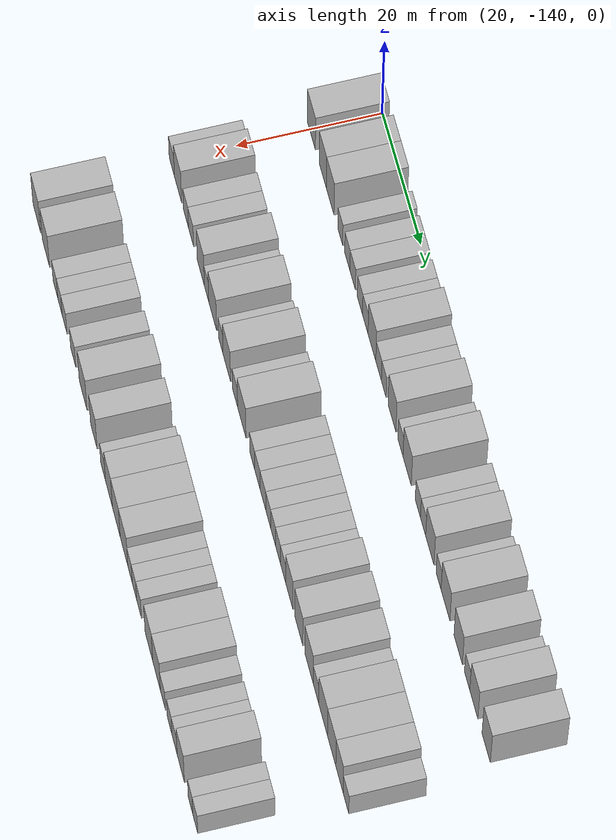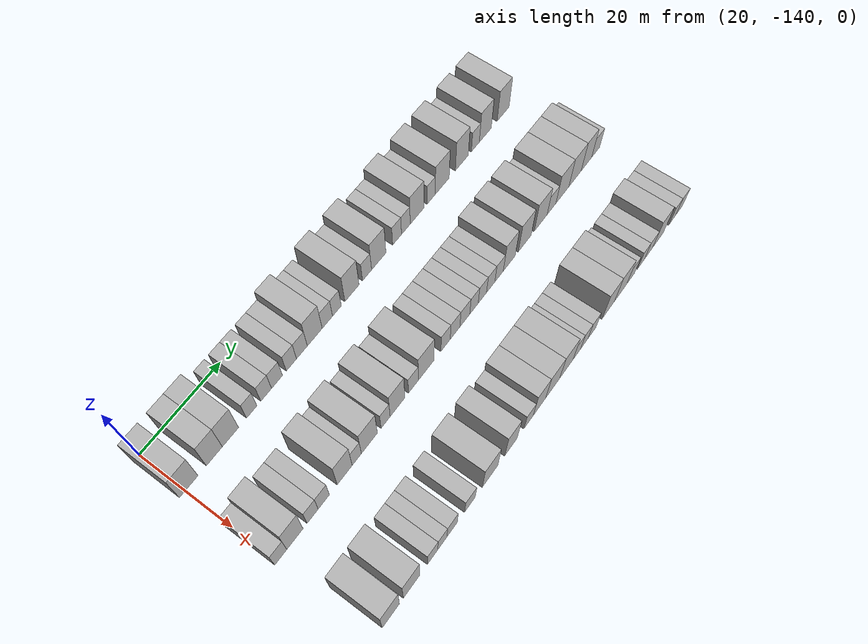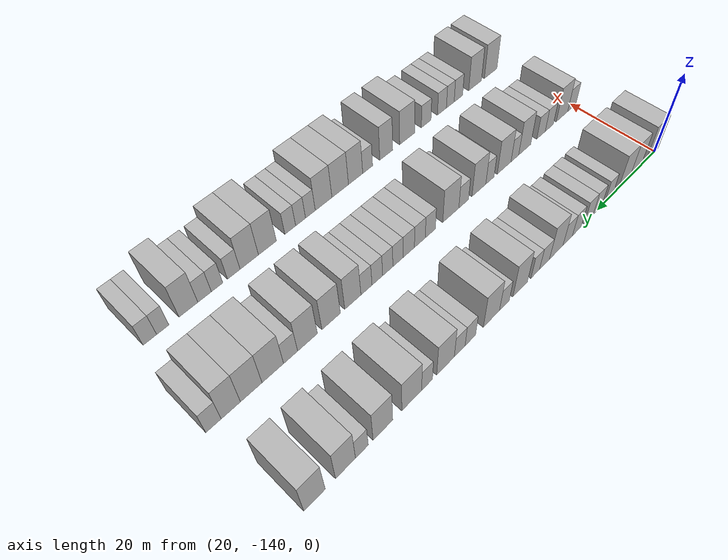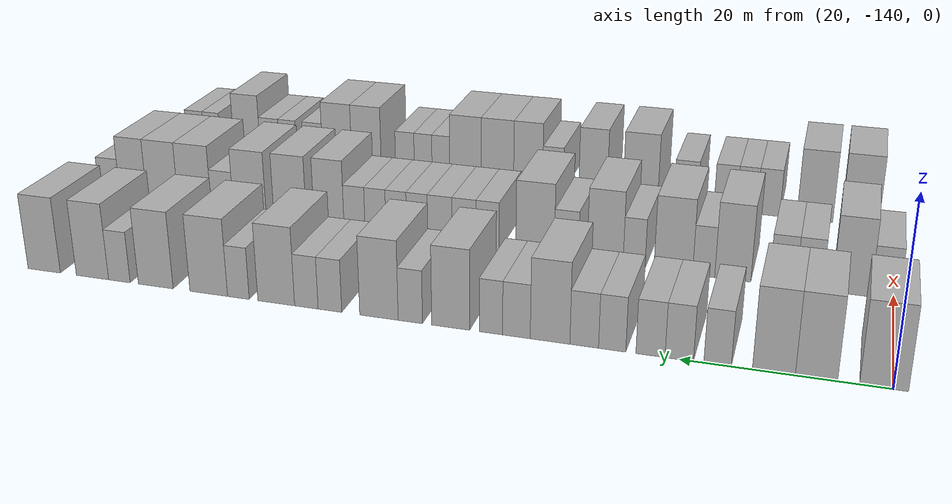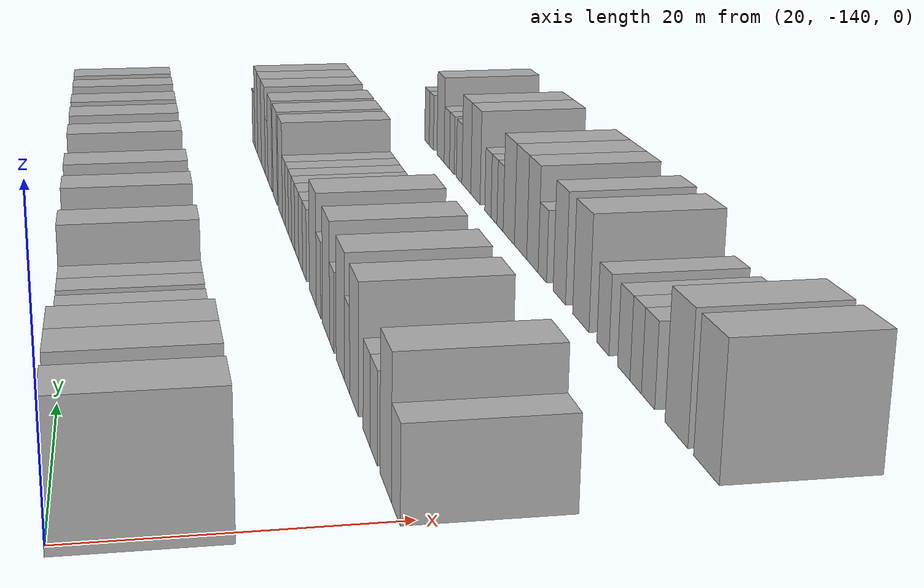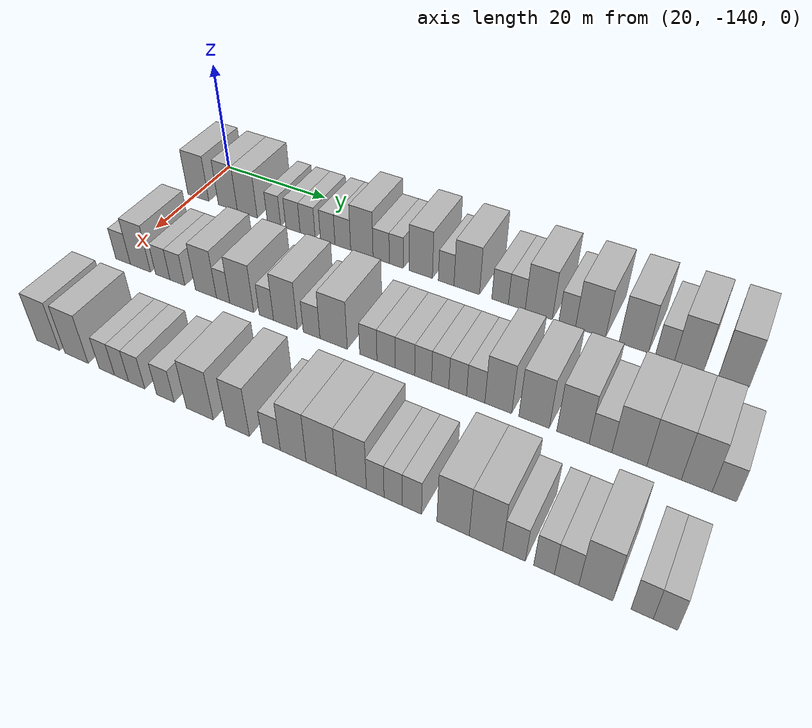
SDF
<sdf version="1.6">
 <world name="default">
  <model name="building_27">
   <static>1</static>
   <pose>25.0000 -139.1423 0 0.000000 0.000000 0.000000</pose>
   <link name="link">
    <pose>0 0 4.50 0 0 0</pose>
    <collision name="collision"><geometry><box><size>10.0000 4.4255 9.0000</size></box></geometry></collision>
    <visual name="visual">
     <cast_shadows>0</cast_shadows>
     <geometry><box><size>10.0000 4.4255 9.0000</size></box></geometry>
     <material>
      <script>
       <uri>model://HANNAS_wall/materials/scripts</uri>
       <uri>model://HANNAS_wall/materials/textures</uri>
       <name>vrc/HANNAS_wall</name>
      </script>
     </material>
    </visual>
   </link>
  </model>
  <model name="building_28">
   <static>1</static>
   <pose>25.0000 -132.9723 0 0.000000 0.000000 0.000000</pose>
   <link name="link">
    <pose>0 0 4.50 0 0 0</pose>
    <collision name="collision"><geometry><box><size>10.0000 3.9146 9.0000</size></box></geometry></collision>
    <visual name="visual">
     <cast_shadows>0</cast_shadows>
     <geometry><box><size>10.0000 3.9146 9.0000</size></box></geometry>
     <material>
      <script>
       <uri>model://HANNAS_wall/materials/scripts</uri>
       <uri>model://HANNAS_wall/materials/textures</uri>
       <name>vrc/HANNAS_wall</name>
      </script>
     </material>
    </visual>
   </link>
  </model>
  <model name="building_29">
   <static>1</static>
   <pose>25.0000 -128.9965 0 0.000000 0.000000 0.000000</pose>
   <link name="link">
    <pose>0 0 4.50 0 0 0</pose>
    <collision name="collision"><geometry><box><size>10.0000 4.0370 9.0000</size></box></geometry></collision>
    <visual name="visual">
     <cast_shadows>0</cast_shadows>
     <geometry><box><size>10.0000 4.0370 9.0000</size></box></geometry>
     <material>
      <script>
       <uri>model://HANNAS_wall/materials/scripts</uri>
       <uri>model://HANNAS_wall/materials/textures</uri>
       <name>vrc/HANNAS_wall</name>
      </script>
     </material>
    </visual>
   </link>
  </model>
  <model name="building_30">
   <static>1</static>
   <pose>25.0000 -123.6580 0 0.000000 0.000000 0.000000</pose>
   <link name="link">
    <pose>0 0 3.00 0 0 0</pose>
    <collision name="collision"><geometry><box><size>10.0000 2.6400 6.0000</size></box></geometry></collision>
    <visual name="visual">
     <cast_shadows>0</cast_shadows>
     <geometry><box><size>10.0000 2.6400 6.0000</size></box></geometry>
     <material>
      <script>
       <uri>model://HANNAS_wall/materials/scripts</uri>
       <uri>model://HANNAS_wall/materials/textures</uri>
       <name>vrc/HANNAS_wall</name>
      </script>
     </material>
    </visual>
   </link>
  </model>
  <model name="building_31">
   <static>1</static>
   <pose>25.0000 -119.9525 0 0.000000 0.000000 0.000000</pose>
   <link name="link">
    <pose>0 0 3.00 0 0 0</pose>
    <collision name="collision"><geometry><box><size>10.0000 2.7710 6.0000</size></box></geometry></collision>
    <visual name="visual">
     <cast_shadows>0</cast_shadows>
     <geometry><box><size>10.0000 2.7710 6.0000</size></box></geometry>
     <material>
      <script>
       <uri>model://HANNAS_wall/materials/scripts</uri>
       <uri>model://HANNAS_wall/materials/textures</uri>
       <name>vrc/HANNAS_wall</name>
      </script>
     </material>
    </visual>
   </link>
  </model>
  <model name="building_32">
   <static>1</static>
   <pose>25.0000 -117.1328 0 0.000000 0.000000 0.000000</pose>
   <link name="link">
    <pose>0 0 3.00 0 0 0</pose>
    <collision name="collision"><geometry><box><size>10.0000 2.8685 6.0000</size></box></geometry></collision>
    <visual name="visual">
     <cast_shadows>0</cast_shadows>
     <geometry><box><size>10.0000 2.8685 6.0000</size></box></geometry>
     <material>
      <script>
       <uri>model://HANNAS_wall/materials/scripts</uri>
       <uri>model://HANNAS_wall/materials/textures</uri>
       <name>vrc/HANNAS_wall</name>
      </script>
     </material>
    </visual>
   </link>
  </model>
  <model name="building_33">
   <static>1</static>
   <pose>25.0000 -113.3362 0 0.000000 0.000000 0.000000</pose>
   <link name="link">
    <pose>0 0 3.00 0 0 0</pose>
    <collision name="collision"><geometry><box><size>10.0000 2.7246 6.0000</size></box></geometry></collision>
    <visual name="visual">
     <cast_shadows>0</cast_shadows>
     <geometry><box><size>10.0000 2.7246 6.0000</size></box></geometry>
     <material>
      <script>
       <uri>model://HANNAS_wall/materials/scripts</uri>
       <uri>model://HANNAS_wall/materials/textures</uri>
       <name>vrc/HANNAS_wall</name>
      </script>
     </material>
    </visual>
   </link>
  </model>
  <model name="building_34">
   <static>1</static>
   <pose>25.0000 -110.5225 0 0.000000 0.000000 0.000000</pose>
   <link name="link">
    <pose>0 0 3.00 0 0 0</pose>
    <collision name="collision"><geometry><box><size>10.0000 2.9027 6.0000</size></box></geometry></collision>
    <visual name="visual">
     <cast_shadows>0</cast_shadows>
     <geometry><box><size>10.0000 2.9027 6.0000</size></box></geometry>
     <material>
      <script>
       <uri>model://HANNAS_wall/materials/scripts</uri>
       <uri>model://HANNAS_wall/materials/textures</uri>
       <name>vrc/HANNAS_wall</name>
      </script>
     </material>
    </visual>
   </link>
  </model>
  <model name="building_35">
   <static>1</static>
   <pose>25.0000 -107.0426 0 0.000000 0.000000 0.000000</pose>
   <link name="link">
    <pose>0 0 4.50 0 0 0</pose>
    <collision name="collision"><geometry><box><size>10.0000 4.0572 9.0000</size></box></geometry></collision>
    <visual name="visual">
     <cast_shadows>0</cast_shadows>
     <geometry><box><size>10.0000 4.0572 9.0000</size></box></geometry>
     <material>
      <script>
       <uri>model://HANNAS_wall/materials/scripts</uri>
       <uri>model://HANNAS_wall/materials/textures</uri>
       <name>vrc/HANNAS_wall</name>
      </script>
     </material>
    </visual>
   </link>
  </model>
  <model name="building_36">
   <static>1</static>
   <pose>25.0000 -103.5754 0 0.000000 0.000000 0.000000</pose>
   <link name="link">
    <pose>0 0 3.00 0 0 0</pose>
    <collision name="collision"><geometry><box><size>10.0000 2.8773 6.0000</size></box></geometry></collision>
    <visual name="visual">
     <cast_shadows>0</cast_shadows>
     <geometry><box><size>10.0000 2.8773 6.0000</size></box></geometry>
     <material>
      <script>
       <uri>model://HANNAS_wall/materials/scripts</uri>
       <uri>model://HANNAS_wall/materials/textures</uri>
       <name>vrc/HANNAS_wall</name>
      </script>
     </material>
    </visual>
   </link>
  </model>
  <model name="building_37">
   <static>1</static>
   <pose>25.0000 -100.9123 0 0.000000 0.000000 0.000000</pose>
   <link name="link">
    <pose>0 0 3.00 0 0 0</pose>
    <collision name="collision"><geometry><box><size>10.0000 2.4487 6.0000</size></box></geometry></collision>
    <visual name="visual">
     <cast_shadows>0</cast_shadows>
     <geometry><box><size>10.0000 2.4487 6.0000</size></box></geometry>
     <material>
      <script>
       <uri>model://HANNAS_wall/materials/scripts</uri>
       <uri>model://HANNAS_wall/materials/textures</uri>
       <name>vrc/HANNAS_wall</name>
      </script>
     </material>
    </visual>
   </link>
  </model>
  <model name="building_38">
   <static>1</static>
   <pose>25.0000 -96.6644 0 0.000000 0.000000 0.000000</pose>
   <link name="link">
    <pose>0 0 4.50 0 0 0</pose>
    <collision name="collision"><geometry><box><size>10.0000 4.0472 9.0000</size></box></geometry></collision>
    <visual name="visual">
     <cast_shadows>0</cast_shadows>
     <geometry><box><size>10.0000 4.0472 9.0000</size></box></geometry>
     <material>
      <script>
       <uri>model://HANNAS_wall/materials/scripts</uri>
       <uri>model://HANNAS_wall/materials/textures</uri>
       <name>vrc/HANNAS_wall</name>
      </script>
     </material>
    </visual>
   </link>
  </model>
  <model name="building_39">
   <static>1</static>
   <pose>25.0000 -92.3256 0 0.000000 0.000000 0.000000</pose>
   <link name="link">
    <pose>0 0 3.00 0 0 0</pose>
    <collision name="collision"><geometry><box><size>10.0000 2.6303 6.0000</size></box></geometry></collision>
    <visual name="visual">
     <cast_shadows>0</cast_shadows>
     <geometry><box><size>10.0000 2.6303 6.0000</size></box></geometry>
     <material>
      <script>
       <uri>model://HANNAS_wall/materials/scripts</uri>
       <uri>model://HANNAS_wall/materials/textures</uri>
       <name>vrc/HANNAS_wall</name>
      </script>
     </material>
    </visual>
   </link>
  </model>
  <model name="building_40">
   <static>1</static>
   <pose>25.0000 -88.8999 0 0.000000 0.000000 0.000000</pose>
   <link name="link">
    <pose>0 0 4.50 0 0 0</pose>
    <collision name="collision"><geometry><box><size>10.0000 4.2213 9.0000</size></box></geometry></collision>
    <visual name="visual">
     <cast_shadows>0</cast_shadows>
     <geometry><box><size>10.0000 4.2213 9.0000</size></box></geometry>
     <material>
      <script>
       <uri>model://HANNAS_wall/materials/scripts</uri>
       <uri>model://HANNAS_wall/materials/textures</uri>
       <name>vrc/HANNAS_wall</name>
      </script>
     </material>
    </visual>
   </link>
  </model>
  <model name="building_41">
   <static>1</static>
   <pose>25.0000 -83.4641 0 0.000000 0.000000 0.000000</pose>
   <link name="link">
    <pose>0 0 3.00 0 0 0</pose>
    <collision name="collision"><geometry><box><size>10.0000 2.6504 6.0000</size></box></geometry></collision>
    <visual name="visual">
     <cast_shadows>0</cast_shadows>
     <geometry><box><size>10.0000 2.6504 6.0000</size></box></geometry>
     <material>
      <script>
       <uri>model://HANNAS_wall/materials/scripts</uri>
       <uri>model://HANNAS_wall/materials/textures</uri>
       <name>vrc/HANNAS_wall</name>
      </script>
     </material>
    </visual>
   </link>
  </model>
  <model name="building_42">
   <static>1</static>
   <pose>25.0000 -80.8119 0 0.000000 0.000000 0.000000</pose>
   <link name="link">
    <pose>0 0 3.00 0 0 0</pose>
    <collision name="collision"><geometry><box><size>10.0000 2.6540 6.0000</size></box></geometry></collision>
    <visual name="visual">
     <cast_shadows>0</cast_shadows>
     <geometry><box><size>10.0000 2.6540 6.0000</size></box></geometry>
     <material>
      <script>
       <uri>model://HANNAS_wall/materials/scripts</uri>
       <uri>model://HANNAS_wall/materials/textures</uri>
       <name>vrc/HANNAS_wall</name>
      </script>
     </material>
    </visual>
   </link>
  </model>
  <model name="building_43">
   <static>1</static>
   <pose>25.0000 -77.3776 0 0.000000 0.000000 0.000000</pose>
   <link name="link">
    <pose>0 0 4.50 0 0 0</pose>
    <collision name="collision"><geometry><box><size>10.0000 4.2144 9.0000</size></box></geometry></collision>
    <visual name="visual">
     <cast_shadows>0</cast_shadows>
     <geometry><box><size>10.0000 4.2144 9.0000</size></box></geometry>
     <material>
      <script>
       <uri>model://HANNAS_wall/materials/scripts</uri>
       <uri>model://HANNAS_wall/materials/textures</uri>
       <name>vrc/HANNAS_wall</name>
      </script>
     </material>
    </visual>
   </link>
  </model>
  <model name="building_44">
   <static>1</static>
   <pose>25.0000 -73.0093 0 0.000000 0.000000 0.000000</pose>
   <link name="link">
    <pose>0 0 3.00 0 0 0</pose>
    <collision name="collision"><geometry><box><size>10.0000 2.5224 6.0000</size></box></geometry></collision>
    <visual name="visual">
     <cast_shadows>0</cast_shadows>
     <geometry><box><size>10.0000 2.5224 6.0000</size></box></geometry>
     <material>
      <script>
       <uri>model://HANNAS_wall/materials/scripts</uri>
       <uri>model://HANNAS_wall/materials/textures</uri>
       <name>vrc/HANNAS_wall</name>
      </script>
     </material>
    </visual>
   </link>
  </model>
  <model name="building_45">
   <static>1</static>
   <pose>25.0000 -69.5281 0 0.000000 0.000000 0.000000</pose>
   <link name="link">
    <pose>0 0 4.50 0 0 0</pose>
    <collision name="collision"><geometry><box><size>10.0000 4.4400 9.0000</size></box></geometry></collision>
    <visual name="visual">
     <cast_shadows>0</cast_shadows>
     <geometry><box><size>10.0000 4.4400 9.0000</size></box></geometry>
     <material>
      <script>
       <uri>model://HANNAS_wall/materials/scripts</uri>
       <uri>model://HANNAS_wall/materials/textures</uri>
       <name>vrc/HANNAS_wall</name>
      </script>
     </material>
    </visual>
   </link>
  </model>
  <model name="building_46">
   <static>1</static>
   <pose>25.0000 -63.2074 0 0.000000 0.000000 0.000000</pose>
   <link name="link">
    <pose>0 0 4.50 0 0 0</pose>
    <collision name="collision"><geometry><box><size>10.0000 4.2015 9.0000</size></box></geometry></collision>
    <visual name="visual">
     <cast_shadows>0</cast_shadows>
     <geometry><box><size>10.0000 4.2015 9.0000</size></box></geometry>
     <material>
      <script>
       <uri>model://HANNAS_wall/materials/scripts</uri>
       <uri>model://HANNAS_wall/materials/textures</uri>
       <name>vrc/HANNAS_wall</name>
      </script>
     </material>
    </visual>
   </link>
  </model>
  <model name="building_47">
   <static>1</static>
   <pose>25.0000 -58.7870 0 0.000000 0.000000 0.000000</pose>
   <link name="link">
    <pose>0 0 3.00 0 0 0</pose>
    <collision name="collision"><geometry><box><size>10.0000 2.6392 6.0000</size></box></geometry></collision>
    <visual name="visual">
     <cast_shadows>0</cast_shadows>
     <geometry><box><size>10.0000 2.6392 6.0000</size></box></geometry>
     <material>
      <script>
       <uri>model://HANNAS_wall/materials/scripts</uri>
       <uri>model://HANNAS_wall/materials/textures</uri>
       <name>vrc/HANNAS_wall</name>
      </script>
     </material>
    </visual>
   </link>
  </model>
  <model name="building_48">
   <static>1</static>
   <pose>25.0000 -55.4667 0 0.000000 0.000000 0.000000</pose>
   <link name="link">
    <pose>0 0 4.50 0 0 0</pose>
    <collision name="collision"><geometry><box><size>10.0000 4.0013 9.0000</size></box></geometry></collision>
    <visual name="visual">
     <cast_shadows>0</cast_shadows>
     <geometry><box><size>10.0000 4.0013 9.0000</size></box></geometry>
     <material>
      <script>
       <uri>model://HANNAS_wall/materials/scripts</uri>
       <uri>model://HANNAS_wall/materials/textures</uri>
       <name>vrc/HANNAS_wall</name>
      </script>
     </material>
    </visual>
   </link>
  </model>
  <model name="building_49">
   <static>1</static>
   <pose>25.0000 -49.4250 0 0.000000 0.000000 0.000000</pose>
   <link name="link">
    <pose>0 0 4.50 0 0 0</pose>
    <collision name="collision"><geometry><box><size>10.0000 4.0821 9.0000</size></box></geometry></collision>
    <visual name="visual">
     <cast_shadows>0</cast_shadows>
     <geometry><box><size>10.0000 4.0821 9.0000</size></box></geometry>
     <material>
      <script>
       <uri>model://HANNAS_wall/materials/scripts</uri>
       <uri>model://HANNAS_wall/materials/textures</uri>
       <name>vrc/HANNAS_wall</name>
      </script>
     </material>
    </visual>
   </link>
  </model>
  <model name="building_145">
   <static>1</static>
   <pose>44.0000 -139.0932 0 0.000000 0.000000 0.000000</pose>
   <link name="link">
    <pose>0 0 3.00 0 0 0</pose>
    <collision name="collision"><geometry><box><size>10.0000 2.9349 6.0000</size></box></geometry></collision>
    <visual name="visual">
     <cast_shadows>0</cast_shadows>
     <geometry><box><size>10.0000 2.9349 6.0000</size></box></geometry>
     <material>
      <script>
       <uri>model://HANNAS_wall/materials/scripts</uri>
       <uri>model://HANNAS_wall/materials/textures</uri>
       <name>vrc/HANNAS_wall</name>
      </script>
     </material>
    </visual>
   </link>
  </model>
  <model name="building_146">
   <static>1</static>
   <pose>44.0000 -135.6249 0 0.000000 0.000000 0.000000</pose>
   <link name="link">
    <pose>0 0 4.50 0 0 0</pose>
    <collision name="collision"><geometry><box><size>10.0000 4.0017 9.0000</size></box></geometry></collision>
    <visual name="visual">
     <cast_shadows>0</cast_shadows>
     <geometry><box><size>10.0000 4.0017 9.0000</size></box></geometry>
     <material>
      <script>
       <uri>model://HANNAS_wall/materials/scripts</uri>
       <uri>model://HANNAS_wall/materials/textures</uri>
       <name>vrc/HANNAS_wall</name>
      </script>
     </material>
    </visual>
   </link>
  </model>
  <model name="building_147">
   <static>1</static>
   <pose>44.0000 -131.2350 0 0.000000 0.000000 0.000000</pose>
   <link name="link">
    <pose>0 0 3.00 0 0 0</pose>
    <collision name="collision"><geometry><box><size>10.0000 2.7780 6.0000</size></box></geometry></collision>
    <visual name="visual">
     <cast_shadows>0</cast_shadows>
     <geometry><box><size>10.0000 2.7780 6.0000</size></box></geometry>
     <material>
      <script>
       <uri>model://HANNAS_wall/materials/scripts</uri>
       <uri>model://HANNAS_wall/materials/textures</uri>
       <name>vrc/HANNAS_wall</name>
      </script>
     </material>
    </visual>
   </link>
  </model>
  <model name="building_148">
   <static>1</static>
   <pose>44.0000 -128.4237 0 0.000000 0.000000 0.000000</pose>
   <link name="link">
    <pose>0 0 3.00 0 0 0</pose>
    <collision name="collision"><geometry><box><size>10.0000 2.8447 6.0000</size></box></geometry></collision>
    <visual name="visual">
     <cast_shadows>0</cast_shadows>
     <geometry><box><size>10.0000 2.8447 6.0000</size></box></geometry>
     <material>
      <script>
       <uri>model://HANNAS_wall/materials/scripts</uri>
       <uri>model://HANNAS_wall/materials/textures</uri>
       <name>vrc/HANNAS_wall</name>
      </script>
     </material>
    </visual>
   </link>
  </model>
  <model name="building_149">
   <static>1</static>
   <pose>44.0000 -123.0431 0 0.000000 0.000000 0.000000</pose>
   <link name="link">
    <pose>0 0 4.50 0 0 0</pose>
    <collision name="collision"><geometry><box><size>10.0000 3.9165 9.0000</size></box></geometry></collision>
    <visual name="visual">
     <cast_shadows>0</cast_shadows>
     <geometry><box><size>10.0000 3.9165 9.0000</size></box></geometry>
     <material>
      <script>
       <uri>model://HANNAS_wall/materials/scripts</uri>
       <uri>model://HANNAS_wall/materials/textures</uri>
       <name>vrc/HANNAS_wall</name>
      </script>
     </material>
    </visual>
   </link>
  </model>
  <model name="building_150">
   <static>1</static>
   <pose>44.0000 -119.8738 0 0.000000 0.000000 0.000000</pose>
   <link name="link">
    <pose>0 0 3.00 0 0 0</pose>
    <collision name="collision"><geometry><box><size>10.0000 2.4221 6.0000</size></box></geometry></collision>
    <visual name="visual">
     <cast_shadows>0</cast_shadows>
     <geometry><box><size>10.0000 2.4221 6.0000</size></box></geometry>
     <material>
      <script>
       <uri>model://HANNAS_wall/materials/scripts</uri>
       <uri>model://HANNAS_wall/materials/textures</uri>
       <name>vrc/HANNAS_wall</name>
      </script>
     </material>
    </visual>
   </link>
  </model>
  <model name="building_151">
   <static>1</static>
   <pose>44.0000 -116.5180 0 0.000000 0.000000 0.000000</pose>
   <link name="link">
    <pose>0 0 4.50 0 0 0</pose>
    <collision name="collision"><geometry><box><size>10.0000 4.2893 9.0000</size></box></geometry></collision>
    <visual name="visual">
     <cast_shadows>0</cast_shadows>
     <geometry><box><size>10.0000 4.2893 9.0000</size></box></geometry>
     <material>
      <script>
       <uri>model://HANNAS_wall/materials/scripts</uri>
       <uri>model://HANNAS_wall/materials/textures</uri>
       <name>vrc/HANNAS_wall</name>
      </script>
     </material>
    </visual>
   </link>
  </model>
  <model name="building_152">
   <static>1</static>
   <pose>44.0000 -112.1349 0 0.000000 0.000000 0.000000</pose>
   <link name="link">
    <pose>0 0 3.00 0 0 0</pose>
    <collision name="collision"><geometry><box><size>10.0000 2.4771 6.0000</size></box></geometry></collision>
    <visual name="visual">
     <cast_shadows>0</cast_shadows>
     <geometry><box><size>10.0000 2.4771 6.0000</size></box></geometry>
     <material>
      <script>
       <uri>model://HANNAS_wall/materials/scripts</uri>
       <uri>model://HANNAS_wall/materials/textures</uri>
       <name>vrc/HANNAS_wall</name>
      </script>
     </material>
    </visual>
   </link>
  </model>
  <model name="building_153">
   <static>1</static>
   <pose>44.0000 -108.8501 0 0.000000 0.000000 0.000000</pose>
   <link name="link">
    <pose>0 0 4.50 0 0 0</pose>
    <collision name="collision"><geometry><box><size>10.0000 4.0924 9.0000</size></box></geometry></collision>
    <visual name="visual">
     <cast_shadows>0</cast_shadows>
     <geometry><box><size>10.0000 4.0924 9.0000</size></box></geometry>
     <material>
      <script>
       <uri>model://HANNAS_wall/materials/scripts</uri>
       <uri>model://HANNAS_wall/materials/textures</uri>
       <name>vrc/HANNAS_wall</name>
      </script>
     </material>
    </visual>
   </link>
  </model>
  <model name="building_154">
   <static>1</static>
   <pose>44.0000 -104.4054 0 0.000000 0.000000 0.000000</pose>
   <link name="link">
    <pose>0 0 3.00 0 0 0</pose>
    <collision name="collision"><geometry><box><size>10.0000 2.7970 6.0000</size></box></geometry></collision>
    <visual name="visual">
     <cast_shadows>0</cast_shadows>
     <geometry><box><size>10.0000 2.7970 6.0000</size></box></geometry>
     <material>
      <script>
       <uri>model://HANNAS_wall/materials/scripts</uri>
       <uri>model://HANNAS_wall/materials/textures</uri>
       <name>vrc/HANNAS_wall</name>
      </script>
     </material>
    </visual>
   </link>
  </model>
  <model name="building_155">
   <static>1</static>
   <pose>44.0000 -100.7627 0 0.000000 0.000000 0.000000</pose>
   <link name="link">
    <pose>0 0 4.50 0 0 0</pose>
    <collision name="collision"><geometry><box><size>10.0000 4.4885 9.0000</size></box></geometry></collision>
    <visual name="visual">
     <cast_shadows>0</cast_shadows>
     <geometry><box><size>10.0000 4.4885 9.0000</size></box></geometry>
     <material>
      <script>
       <uri>model://HANNAS_wall/materials/scripts</uri>
       <uri>model://HANNAS_wall/materials/textures</uri>
       <name>vrc/HANNAS_wall</name>
      </script>
     </material>
    </visual>
   </link>
  </model>
  <model name="building_156">
   <static>1</static>
   <pose>44.0000 -95.1484 0 0.000000 0.000000 0.000000</pose>
   <link name="link">
    <pose>0 0 3.00 0 0 0</pose>
    <collision name="collision"><geometry><box><size>10.0000 2.7400 6.0000</size></box></geometry></collision>
    <visual name="visual">
     <cast_shadows>0</cast_shadows>
     <geometry><box><size>10.0000 2.7400 6.0000</size></box></geometry>
     <material>
      <script>
       <uri>model://HANNAS_wall/materials/scripts</uri>
       <uri>model://HANNAS_wall/materials/textures</uri>
       <name>vrc/HANNAS_wall</name>
      </script>
     </material>
    </visual>
   </link>
  </model>
  <model name="building_157">
   <static>1</static>
   <pose>44.0000 -92.3435 0 0.000000 0.000000 0.000000</pose>
   <link name="link">
    <pose>0 0 3.00 0 0 0</pose>
    <collision name="collision"><geometry><box><size>10.0000 2.8699 6.0000</size></box></geometry></collision>
    <visual name="visual">
     <cast_shadows>0</cast_shadows>
     <geometry><box><size>10.0000 2.8699 6.0000</size></box></geometry>
     <material>
      <script>
       <uri>model://HANNAS_wall/materials/scripts</uri>
       <uri>model://HANNAS_wall/materials/textures</uri>
       <name>vrc/HANNAS_wall</name>
      </script>
     </material>
    </visual>
   </link>
  </model>
  <model name="building_158">
   <static>1</static>
   <pose>44.0000 -89.4257 0 0.000000 0.000000 0.000000</pose>
   <link name="link">
    <pose>0 0 3.00 0 0 0</pose>
    <collision name="collision"><geometry><box><size>10.0000 2.9657 6.0000</size></box></geometry></collision>
    <visual name="visual">
     <cast_shadows>0</cast_shadows>
     <geometry><box><size>10.0000 2.9657 6.0000</size></box></geometry>
     <material>
      <script>
       <uri>model://HANNAS_wall/materials/scripts</uri>
       <uri>model://HANNAS_wall/materials/textures</uri>
       <name>vrc/HANNAS_wall</name>
      </script>
     </material>
    </visual>
   </link>
  </model>
  <model name="building_159">
   <static>1</static>
   <pose>44.0000 -86.6603 0 0.000000 0.000000 0.000000</pose>
   <link name="link">
    <pose>0 0 3.00 0 0 0</pose>
    <collision name="collision"><geometry><box><size>10.0000 2.5653 6.0000</size></box></geometry></collision>
    <visual name="visual">
     <cast_shadows>0</cast_shadows>
     <geometry><box><size>10.0000 2.5653 6.0000</size></box></geometry>
     <material>
      <script>
       <uri>model://HANNAS_wall/materials/scripts</uri>
       <uri>model://HANNAS_wall/materials/textures</uri>
       <name>vrc/HANNAS_wall</name>
      </script>
     </material>
    </visual>
   </link>
  </model>
  <model name="building_160">
   <static>1</static>
   <pose>44.0000 -84.0961 0 0.000000 0.000000 0.000000</pose>
   <link name="link">
    <pose>0 0 3.00 0 0 0</pose>
    <collision name="collision"><geometry><box><size>10.0000 2.5631 6.0000</size></box></geometry></collision>
    <visual name="visual">
     <cast_shadows>0</cast_shadows>
     <geometry><box><size>10.0000 2.5631 6.0000</size></box></geometry>
     <material>
      <script>
       <uri>model://HANNAS_wall/materials/scripts</uri>
       <uri>model://HANNAS_wall/materials/textures</uri>
       <name>vrc/HANNAS_wall</name>
      </script>
     </material>
    </visual>
   </link>
  </model>
  <model name="building_161">
   <static>1</static>
   <pose>44.0000 -81.5129 0 0.000000 0.000000 0.000000</pose>
   <link name="link">
    <pose>0 0 3.00 0 0 0</pose>
    <collision name="collision"><geometry><box><size>10.0000 2.6033 6.0000</size></box></geometry></collision>
    <visual name="visual">
     <cast_shadows>0</cast_shadows>
     <geometry><box><size>10.0000 2.6033 6.0000</size></box></geometry>
     <material>
      <script>
       <uri>model://HANNAS_wall/materials/scripts</uri>
       <uri>model://HANNAS_wall/materials/textures</uri>
       <name>vrc/HANNAS_wall</name>
      </script>
     </material>
    </visual>
   </link>
  </model>
  <model name="building_162">
   <static>1</static>
   <pose>44.0000 -78.8879 0 0.000000 0.000000 0.000000</pose>
   <link name="link">
    <pose>0 0 3.00 0 0 0</pose>
    <collision name="collision"><geometry><box><size>10.0000 2.6468 6.0000</size></box></geometry></collision>
    <visual name="visual">
     <cast_shadows>0</cast_shadows>
     <geometry><box><size>10.0000 2.6468 6.0000</size></box></geometry>
     <material>
      <script>
       <uri>model://HANNAS_wall/materials/scripts</uri>
       <uri>model://HANNAS_wall/materials/textures</uri>
       <name>vrc/HANNAS_wall</name>
      </script>
     </material>
    </visual>
   </link>
  </model>
  <model name="building_163">
   <static>1</static>
   <pose>44.0000 -75.6661 0 0.000000 0.000000 0.000000</pose>
   <link name="link">
    <pose>0 0 4.50 0 0 0</pose>
    <collision name="collision"><geometry><box><size>10.0000 3.7967 9.0000</size></box></geometry></collision>
    <visual name="visual">
     <cast_shadows>0</cast_shadows>
     <geometry><box><size>10.0000 3.7967 9.0000</size></box></geometry>
     <material>
      <script>
       <uri>model://HANNAS_wall/materials/scripts</uri>
       <uri>model://HANNAS_wall/materials/textures</uri>
       <name>vrc/HANNAS_wall</name>
      </script>
     </material>
    </visual>
   </link>
  </model>
  <model name="building_164">
   <static>1</static>
   <pose>44.0000 -70.6749 0 0.000000 0.000000 0.000000</pose>
   <link name="link">
    <pose>0 0 4.50 0 0 0</pose>
    <collision name="collision"><geometry><box><size>10.0000 4.1857 9.0000</size></box></geometry></collision>
    <visual name="visual">
     <cast_shadows>0</cast_shadows>
     <geometry><box><size>10.0000 4.1857 9.0000</size></box></geometry>
     <material>
      <script>
       <uri>model://HANNAS_wall/materials/scripts</uri>
       <uri>model://HANNAS_wall/materials/textures</uri>
       <name>vrc/HANNAS_wall</name>
      </script>
     </material>
    </visual>
   </link>
  </model>
  <model name="building_165">
   <static>1</static>
   <pose>44.0000 -65.4374 0 0.000000 0.000000 0.000000</pose>
   <link name="link">
    <pose>0 0 4.50 0 0 0</pose>
    <collision name="collision"><geometry><box><size>10.0000 4.2892 9.0000</size></box></geometry></collision>
    <visual name="visual">
     <cast_shadows>0</cast_shadows>
     <geometry><box><size>10.0000 4.2892 9.0000</size></box></geometry>
     <material>
      <script>
       <uri>model://HANNAS_wall/materials/scripts</uri>
       <uri>model://HANNAS_wall/materials/textures</uri>
       <name>vrc/HANNAS_wall</name>
      </script>
     </material>
    </visual>
   </link>
  </model>
  <model name="building_166">
   <static>1</static>
   <pose>44.0000 -61.8159 0 0.000000 0.000000 0.000000</pose>
   <link name="link">
    <pose>0 0 3.00 0 0 0</pose>
    <collision name="collision"><geometry><box><size>10.0000 2.9539 6.0000</size></box></geometry></collision>
    <visual name="visual">
     <cast_shadows>0</cast_shadows>
     <geometry><box><size>10.0000 2.9539 6.0000</size></box></geometry>
     <material>
      <script>
       <uri>model://HANNAS_wall/materials/scripts</uri>
       <uri>model://HANNAS_wall/materials/textures</uri>
       <name>vrc/HANNAS_wall</name>
      </script>
     </material>
    </visual>
   </link>
  </model>
  <model name="building_167">
   <static>1</static>
   <pose>44.0000 -58.1243 0 0.000000 0.000000 0.000000</pose>
   <link name="link">
    <pose>0 0 4.50 0 0 0</pose>
    <collision name="collision"><geometry><box><size>10.0000 4.4294 9.0000</size></box></geometry></collision>
    <visual name="visual">
     <cast_shadows>0</cast_shadows>
     <geometry><box><size>10.0000 4.4294 9.0000</size></box></geometry>
     <material>
      <script>
       <uri>model://HANNAS_wall/materials/scripts</uri>
       <uri>model://HANNAS_wall/materials/textures</uri>
       <name>vrc/HANNAS_wall</name>
      </script>
     </material>
    </visual>
   </link>
  </model>
  <model name="building_168">
   <static>1</static>
   <pose>44.0000 -53.7768 0 0.000000 0.000000 0.000000</pose>
   <link name="link">
    <pose>0 0 4.50 0 0 0</pose>
    <collision name="collision"><geometry><box><size>10.0000 4.2656 9.0000</size></box></geometry></collision>
    <visual name="visual">
     <cast_shadows>0</cast_shadows>
     <geometry><box><size>10.0000 4.2656 9.0000</size></box></geometry>
     <material>
      <script>
       <uri>model://HANNAS_wall/materials/scripts</uri>
       <uri>model://HANNAS_wall/materials/textures</uri>
       <name>vrc/HANNAS_wall</name>
      </script>
     </material>
    </visual>
   </link>
  </model>
  <model name="building_169">
   <static>1</static>
   <pose>44.0000 -49.7983 0 0.000000 0.000000 0.000000</pose>
   <link name="link">
    <pose>0 0 4.50 0 0 0</pose>
    <collision name="collision"><geometry><box><size>10.0000 3.6914 9.0000</size></box></geometry></collision>
    <visual name="visual">
     <cast_shadows>0</cast_shadows>
     <geometry><box><size>10.0000 3.6914 9.0000</size></box></geometry>
     <material>
      <script>
       <uri>model://HANNAS_wall/materials/scripts</uri>
       <uri>model://HANNAS_wall/materials/textures</uri>
       <name>vrc/HANNAS_wall</name>
      </script>
     </material>
    </visual>
   </link>
  </model>
  <model name="building_170">
   <static>1</static>
   <pose>44.0000 -46.5069 0 0.000000 0.000000 0.000000</pose>
   <link name="link">
    <pose>0 0 3.00 0 0 0</pose>
    <collision name="collision"><geometry><box><size>10.0000 2.8913 6.0000</size></box></geometry></collision>
    <visual name="visual">
     <cast_shadows>0</cast_shadows>
     <geometry><box><size>10.0000 2.8913 6.0000</size></box></geometry>
     <material>
      <script>
       <uri>model://HANNAS_wall/materials/scripts</uri>
       <uri>model://HANNAS_wall/materials/textures</uri>
       <name>vrc/HANNAS_wall</name>
      </script>
     </material>
    </visual>
   </link>
  </model>
  <model name="building_270">
   <static>1</static>
   <pose>63.0000 -136.0493 0 0.000000 0.000000 0.000000</pose>
   <link name="link">
    <pose>0 0 4.50 0 0 0</pose>
    <collision name="collision"><geometry><box><size>10.0000 4.3046 9.0000</size></box></geometry></collision>
    <visual name="visual">
     <cast_shadows>0</cast_shadows>
     <geometry><box><size>10.0000 4.3046 9.0000</size></box></geometry>
     <material>
      <script>
       <uri>model://HANNAS_wall/materials/scripts</uri>
       <uri>model://HANNAS_wall/materials/textures</uri>
       <name>vrc/HANNAS_wall</name>
      </script>
     </material>
    </visual>
   </link>
  </model>
  <model name="building_271">
   <static>1</static>
   <pose>63.0000 -130.7780 0 0.000000 0.000000 0.000000</pose>
   <link name="link">
    <pose>0 0 4.50 0 0 0</pose>
    <collision name="collision"><geometry><box><size>10.0000 4.2381 9.0000</size></box></geometry></collision>
    <visual name="visual">
     <cast_shadows>0</cast_shadows>
     <geometry><box><size>10.0000 4.2381 9.0000</size></box></geometry>
     <material>
      <script>
       <uri>model://HANNAS_wall/materials/scripts</uri>
       <uri>model://HANNAS_wall/materials/textures</uri>
       <name>vrc/HANNAS_wall</name>
      </script>
     </material>
    </visual>
   </link>
  </model>
  <model name="building_272">
   <static>1</static>
   <pose>63.0000 -125.2918 0 0.000000 0.000000 0.000000</pose>
   <link name="link">
    <pose>0 0 3.00 0 0 0</pose>
    <collision name="collision"><geometry><box><size>10.0000 2.7344 6.0000</size></box></geometry></collision>
    <visual name="visual">
     <cast_shadows>0</cast_shadows>
     <geometry><box><size>10.0000 2.7344 6.0000</size></box></geometry>
     <material>
      <script>
       <uri>model://HANNAS_wall/materials/scripts</uri>
       <uri>model://HANNAS_wall/materials/textures</uri>
       <name>vrc/HANNAS_wall</name>
      </script>
     </material>
    </visual>
   </link>
  </model>
  <model name="building_273">
   <static>1</static>
   <pose>63.0000 -122.6961 0 0.000000 0.000000 0.000000</pose>
   <link name="link">
    <pose>0 0 3.00 0 0 0</pose>
    <collision name="collision"><geometry><box><size>10.0000 2.4568 6.0000</size></box></geometry></collision>
    <visual name="visual">
     <cast_shadows>0</cast_shadows>
     <geometry><box><size>10.0000 2.4568 6.0000</size></box></geometry>
     <material>
      <script>
       <uri>model://HANNAS_wall/materials/scripts</uri>
       <uri>model://HANNAS_wall/materials/textures</uri>
       <name>vrc/HANNAS_wall</name>
      </script>
     </material>
    </visual>
   </link>
  </model>
  <model name="building_274">
   <static>1</static>
   <pose>63.0000 -120.0718 0 0.000000 0.000000 0.000000</pose>
   <link name="link">
    <pose>0 0 3.00 0 0 0</pose>
    <collision name="collision"><geometry><box><size>10.0000 2.7918 6.0000</size></box></geometry></collision>
    <visual name="visual">
     <cast_shadows>0</cast_shadows>
     <geometry><box><size>10.0000 2.7918 6.0000</size></box></geometry>
     <material>
      <script>
       <uri>model://HANNAS_wall/materials/scripts</uri>
       <uri>model://HANNAS_wall/materials/textures</uri>
       <name>vrc/HANNAS_wall</name>
      </script>
     </material>
    </visual>
   </link>
  </model>
  <model name="building_275">
   <static>1</static>
   <pose>63.0000 -115.2060 0 0.000000 0.000000 0.000000</pose>
   <link name="link">
    <pose>0 0 3.00 0 0 0</pose>
    <collision name="collision"><geometry><box><size>10.0000 2.9398 6.0000</size></box></geometry></collision>
    <visual name="visual">
     <cast_shadows>0</cast_shadows>
     <geometry><box><size>10.0000 2.9398 6.0000</size></box></geometry>
     <material>
      <script>
       <uri>model://HANNAS_wall/materials/scripts</uri>
       <uri>model://HANNAS_wall/materials/textures</uri>
       <name>vrc/HANNAS_wall</name>
      </script>
     </material>
    </visual>
   </link>
  </model>
  <model name="building_276">
   <static>1</static>
   <pose>63.0000 -109.5456 0 0.000000 0.000000 0.000000</pose>
   <link name="link">
    <pose>0 0 4.50 0 0 0</pose>
    <collision name="collision"><geometry><box><size>10.0000 4.3810 9.0000</size></box></geometry></collision>
    <visual name="visual">
     <cast_shadows>0</cast_shadows>
     <geometry><box><size>10.0000 4.3810 9.0000</size></box></geometry>
     <material>
      <script>
       <uri>model://HANNAS_wall/materials/scripts</uri>
       <uri>model://HANNAS_wall/materials/textures</uri>
       <name>vrc/HANNAS_wall</name>
      </script>
     </material>
    </visual>
   </link>
  </model>
  <model name="building_277">
   <static>1</static>
   <pose>63.0000 -103.5331 0 0.000000 0.000000 0.000000</pose>
   <link name="link">
    <pose>0 0 4.50 0 0 0</pose>
    <collision name="collision"><geometry><box><size>10.0000 3.6441 9.0000</size></box></geometry></collision>
    <visual name="visual">
     <cast_shadows>0</cast_shadows>
     <geometry><box><size>10.0000 3.6441 9.0000</size></box></geometry>
     <material>
      <script>
       <uri>model://HANNAS_wall/materials/scripts</uri>
       <uri>model://HANNAS_wall/materials/textures</uri>
       <name>vrc/HANNAS_wall</name>
      </script>
     </material>
    </visual>
   </link>
  </model>
  <model name="building_278">
   <static>1</static>
   <pose>63.0000 -98.3632 0 0.000000 0.000000 0.000000</pose>
   <link name="link">
    <pose>0 0 3.00 0 0 0</pose>
    <collision name="collision"><geometry><box><size>10.0000 2.6957 6.0000</size></box></geometry></collision>
    <visual name="visual">
     <cast_shadows>0</cast_shadows>
     <geometry><box><size>10.0000 2.6957 6.0000</size></box></geometry>
     <material>
      <script>
       <uri>model://HANNAS_wall/materials/scripts</uri>
       <uri>model://HANNAS_wall/materials/textures</uri>
       <name>vrc/HANNAS_wall</name>
      </script>
     </material>
    </visual>
   </link>
  </model>
  <model name="building_279">
   <static>1</static>
   <pose>63.0000 -95.1181 0 0.000000 0.000000 0.000000</pose>
   <link name="link">
    <pose>0 0 4.50 0 0 0</pose>
    <collision name="collision"><geometry><box><size>10.0000 3.7945 9.0000</size></box></geometry></collision>
    <visual name="visual">
     <cast_shadows>0</cast_shadows>
     <geometry><box><size>10.0000 3.7945 9.0000</size></box></geometry>
     <material>
      <script>
       <uri>model://HANNAS_wall/materials/scripts</uri>
       <uri>model://HANNAS_wall/materials/textures</uri>
       <name>vrc/HANNAS_wall</name>
      </script>
     </material>
    </visual>
   </link>
  </model>
  <model name="building_280">
   <static>1</static>
   <pose>63.0000 -91.0675 0 0.000000 0.000000 0.000000</pose>
   <link name="link">
    <pose>0 0 4.50 0 0 0</pose>
    <collision name="collision"><geometry><box><size>10.0000 4.3066 9.0000</size></box></geometry></collision>
    <visual name="visual">
     <cast_shadows>0</cast_shadows>
     <geometry><box><size>10.0000 4.3066 9.0000</size></box></geometry>
     <material>
      <script>
       <uri>model://HANNAS_wall/materials/scripts</uri>
       <uri>model://HANNAS_wall/materials/textures</uri>
       <name>vrc/HANNAS_wall</name>
      </script>
     </material>
    </visual>
   </link>
  </model>
  <model name="building_281">
   <static>1</static>
   <pose>63.0000 -86.8014 0 0.000000 0.000000 0.000000</pose>
   <link name="link">
    <pose>0 0 4.50 0 0 0</pose>
    <collision name="collision"><geometry><box><size>10.0000 4.2257 9.0000</size></box></geometry></collision>
    <visual name="visual">
     <cast_shadows>0</cast_shadows>
     <geometry><box><size>10.0000 4.2257 9.0000</size></box></geometry>
     <material>
      <script>
       <uri>model://HANNAS_wall/materials/scripts</uri>
       <uri>model://HANNAS_wall/materials/textures</uri>
       <name>vrc/HANNAS_wall</name>
      </script>
     </material>
    </visual>
   </link>
  </model>
  <model name="building_282">
   <static>1</static>
   <pose>63.0000 -83.4838 0 0.000000 0.000000 0.000000</pose>
   <link name="link">
    <pose>0 0 3.00 0 0 0</pose>
    <collision name="collision"><geometry><box><size>10.0000 2.4093 6.0000</size></box></geometry></collision>
    <visual name="visual">
     <cast_shadows>0</cast_shadows>
     <geometry><box><size>10.0000 2.4093 6.0000</size></box></geometry>
     <material>
      <script>
       <uri>model://HANNAS_wall/materials/scripts</uri>
       <uri>model://HANNAS_wall/materials/textures</uri>
       <name>vrc/HANNAS_wall</name>
      </script>
     </material>
    </visual>
   </link>
  </model>
  <model name="building_283">
   <static>1</static>
   <pose>63.0000 -81.0731 0 0.000000 0.000000 0.000000</pose>
   <link name="link">
    <pose>0 0 3.00 0 0 0</pose>
    <collision name="collision"><geometry><box><size>10.0000 2.4121 6.0000</size></box></geometry></collision>
    <visual name="visual">
     <cast_shadows>0</cast_shadows>
     <geometry><box><size>10.0000 2.4121 6.0000</size></box></geometry>
     <material>
      <script>
       <uri>model://HANNAS_wall/materials/scripts</uri>
       <uri>model://HANNAS_wall/materials/textures</uri>
       <name>vrc/HANNAS_wall</name>
      </script>
     </material>
    </visual>
   </link>
  </model>
  <model name="building_284">
   <static>1</static>
   <pose>63.0000 -78.5750 0 0.000000 0.000000 0.000000</pose>
   <link name="link">
    <pose>0 0 3.00 0 0 0</pose>
    <collision name="collision"><geometry><box><size>10.0000 2.5842 6.0000</size></box></geometry></collision>
    <visual name="visual">
     <cast_shadows>0</cast_shadows>
     <geometry><box><size>10.0000 2.5842 6.0000</size></box></geometry>
     <material>
      <script>
       <uri>model://HANNAS_wall/materials/scripts</uri>
       <uri>model://HANNAS_wall/materials/textures</uri>
       <name>vrc/HANNAS_wall</name>
      </script>
     </material>
    </visual>
   </link>
  </model>
  <model name="building_285">
   <static>1</static>
   <pose>63.0000 -73.2206 0 0.000000 0.000000 0.000000</pose>
   <link name="link">
    <pose>0 0 4.50 0 0 0</pose>
    <collision name="collision"><geometry><box><size>10.0000 4.1246 9.0000</size></box></geometry></collision>
    <visual name="visual">
     <cast_shadows>0</cast_shadows>
     <geometry><box><size>10.0000 4.1246 9.0000</size></box></geometry>
     <material>
      <script>
       <uri>model://HANNAS_wall/materials/scripts</uri>
       <uri>model://HANNAS_wall/materials/textures</uri>
       <name>vrc/HANNAS_wall</name>
      </script>
     </material>
    </visual>
   </link>
  </model>
  <model name="building_286">
   <static>1</static>
   <pose>63.0000 -69.0963 0 0.000000 0.000000 0.000000</pose>
   <link name="link">
    <pose>0 0 4.50 0 0 0</pose>
    <collision name="collision"><geometry><box><size>10.0000 4.1240 9.0000</size></box></geometry></collision>
    <visual name="visual">
     <cast_shadows>0</cast_shadows>
     <geometry><box><size>10.0000 4.1240 9.0000</size></box></geometry>
     <material>
      <script>
       <uri>model://HANNAS_wall/materials/scripts</uri>
       <uri>model://HANNAS_wall/materials/textures</uri>
       <name>vrc/HANNAS_wall</name>
      </script>
     </material>
    </visual>
   </link>
  </model>
  <model name="building_287">
   <static>1</static>
   <pose>63.0000 -65.6573 0 0.000000 0.000000 0.000000</pose>
   <link name="link">
    <pose>0 0 3.00 0 0 0</pose>
    <collision name="collision"><geometry><box><size>10.0000 2.7540 6.0000</size></box></geometry></collision>
    <visual name="visual">
     <cast_shadows>0</cast_shadows>
     <geometry><box><size>10.0000 2.7540 6.0000</size></box></geometry>
     <material>
      <script>
       <uri>model://HANNAS_wall/materials/scripts</uri>
       <uri>model://HANNAS_wall/materials/textures</uri>
       <name>vrc/HANNAS_wall</name>
      </script>
     </material>
    </visual>
   </link>
  </model>
  <model name="building_288">
   <static>1</static>
   <pose>63.0000 -62.0618 0 0.000000 0.000000 0.000000</pose>
   <link name="link">
    <pose>0 0 3.00 0 0 0</pose>
    <collision name="collision"><geometry><box><size>10.0000 2.4370 6.0000</size></box></geometry></collision>
    <visual name="visual">
     <cast_shadows>0</cast_shadows>
     <geometry><box><size>10.0000 2.4370 6.0000</size></box></geometry>
     <material>
      <script>
       <uri>model://HANNAS_wall/materials/scripts</uri>
       <uri>model://HANNAS_wall/materials/textures</uri>
       <name>vrc/HANNAS_wall</name>
      </script>
     </material>
    </visual>
   </link>
  </model>
  <model name="building_289">
   <static>1</static>
   <pose>63.0000 -59.4346 0 0.000000 0.000000 0.000000</pose>
   <link name="link">
    <pose>0 0 3.00 0 0 0</pose>
    <collision name="collision"><geometry><box><size>10.0000 2.8175 6.0000</size></box></geometry></collision>
    <visual name="visual">
     <cast_shadows>0</cast_shadows>
     <geometry><box><size>10.0000 2.8175 6.0000</size></box></geometry>
     <material>
      <script>
       <uri>model://HANNAS_wall/materials/scripts</uri>
       <uri>model://HANNAS_wall/materials/textures</uri>
       <name>vrc/HANNAS_wall</name>
      </script>
     </material>
    </visual>
   </link>
  </model>
  <model name="building_290">
   <static>1</static>
   <pose>63.0000 -56.1025 0 0.000000 0.000000 0.000000</pose>
   <link name="link">
    <pose>0 0 4.50 0 0 0</pose>
    <collision name="collision"><geometry><box><size>10.0000 3.8466 9.0000</size></box></geometry></collision>
    <visual name="visual">
     <cast_shadows>0</cast_shadows>
     <geometry><box><size>10.0000 3.8466 9.0000</size></box></geometry>
     <material>
      <script>
       <uri>model://HANNAS_wall/materials/scripts</uri>
       <uri>model://HANNAS_wall/materials/textures</uri>
       <name>vrc/HANNAS_wall</name>
      </script>
     </material>
    </visual>
   </link>
  </model>
  <model name="building_291">
   <static>1</static>
   <pose>63.0000 -50.9701 0 0.000000 0.000000 0.000000</pose>
   <link name="link">
    <pose>0 0 3.00 0 0 0</pose>
    <collision name="collision"><geometry><box><size>10.0000 2.4181 6.0000</size></box></geometry></collision>
    <visual name="visual">
     <cast_shadows>0</cast_shadows>
     <geometry><box><size>10.0000 2.4181 6.0000</size></box></geometry>
     <material>
      <script>
       <uri>model://HANNAS_wall/materials/scripts</uri>
       <uri>model://HANNAS_wall/materials/textures</uri>
       <name>vrc/HANNAS_wall</name>
      </script>
     </material>
    </visual>
   </link>
  </model>
  <model name="building_292">
   <static>1</static>
   <pose>63.0000 -48.4541 0 0.000000 0.000000 0.000000</pose>
   <link name="link">
    <pose>0 0 3.00 0 0 0</pose>
    <collision name="collision"><geometry><box><size>10.0000 2.6139 6.0000</size></box></geometry></collision>
    <visual name="visual">
     <cast_shadows>0</cast_shadows>
     <geometry><box><size>10.0000 2.6139 6.0000</size></box></geometry>
     <material>
      <script>
       <uri>model://HANNAS_wall/materials/scripts</uri>
       <uri>model://HANNAS_wall/materials/textures</uri>
       <name>vrc/HANNAS_wall</name>
      </script>
     </material>
    </visual>
   </link>
  </model>
 </world>
</sdf>
